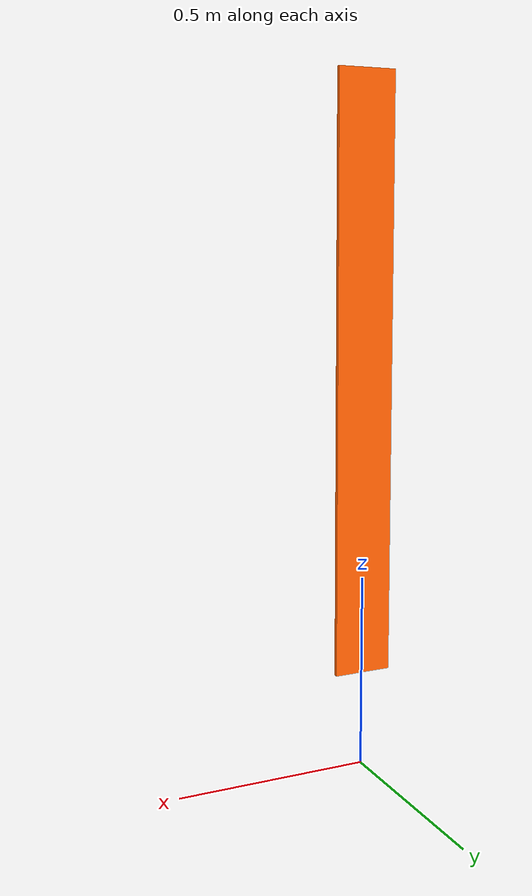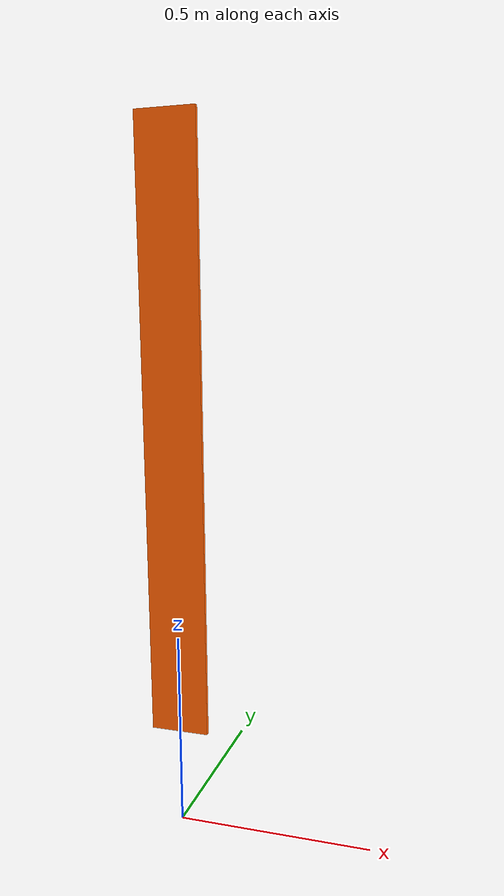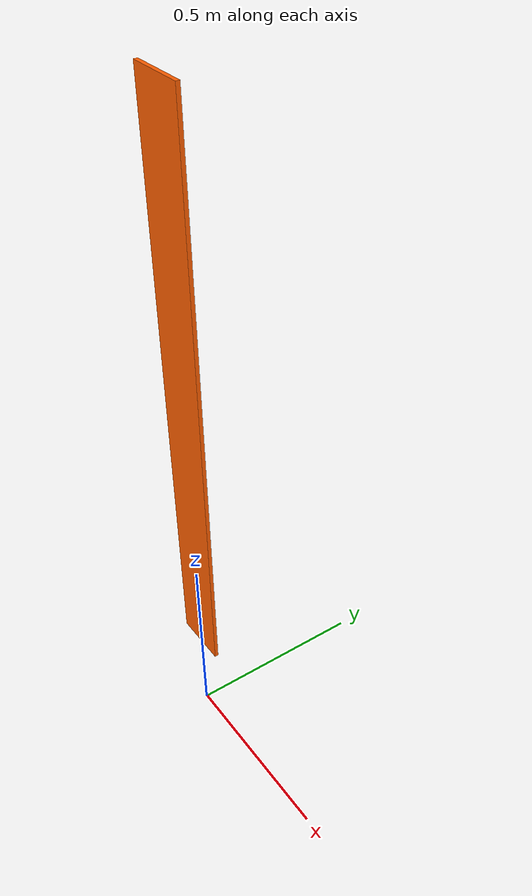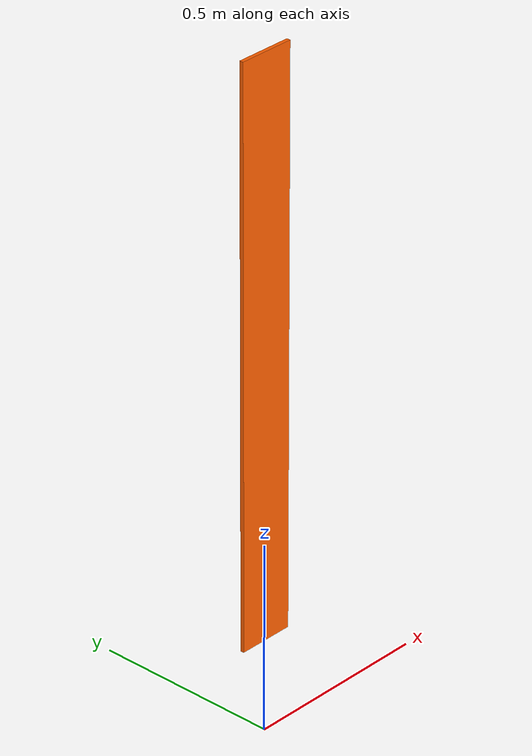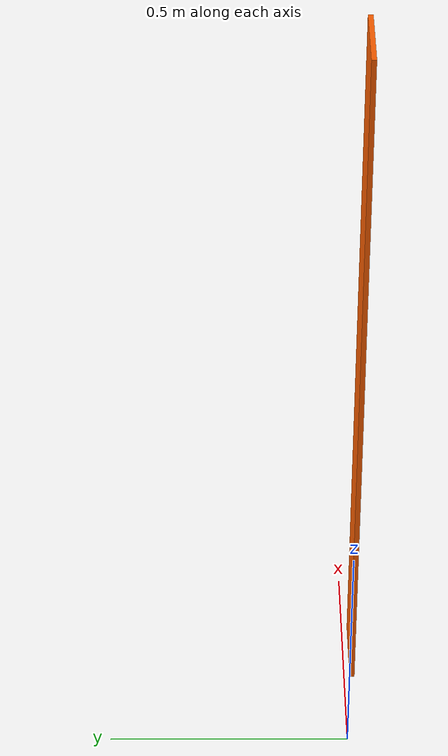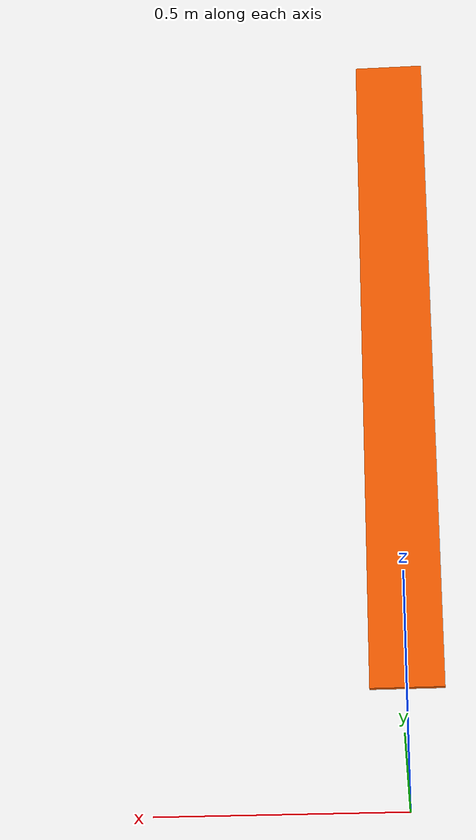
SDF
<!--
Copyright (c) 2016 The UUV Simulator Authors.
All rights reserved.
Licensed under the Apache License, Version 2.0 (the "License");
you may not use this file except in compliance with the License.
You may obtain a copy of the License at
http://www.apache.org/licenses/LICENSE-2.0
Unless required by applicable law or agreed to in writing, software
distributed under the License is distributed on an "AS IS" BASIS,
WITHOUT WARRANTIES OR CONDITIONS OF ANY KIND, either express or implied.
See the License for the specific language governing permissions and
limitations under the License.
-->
<?xml version="1.0" ?>
<sdf version="1.5">
  <model name="orange_flare">
    <static>true</static>
    <link name="link">
      <collision name="flare_geom">
        <pose>0 0 0 0 0 0</pose>
        <geometry>
          <box>
            <size>0.15 0.01 1.5</size>
          </box>
        </geometry>
      </collision>
      <visual name="flare_visual">
        <pose degrees="true">0 0 1 0 0 0</pose>
        <geometry>
          <box>
            <size>0.15 0.01 1.5</size>
          </box>
        </geometry>
        <material>
          <ambient>1 0.374 0 1</ambient>
          <diffuse>1 0.374 0 1</diffuse>
          <specular>1 0.374 0 1</specular>
        </material>
      </visual>
    </link>
  </model>
</sdf>
